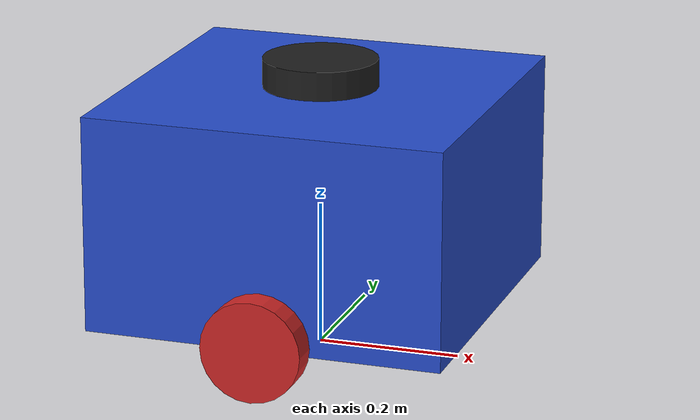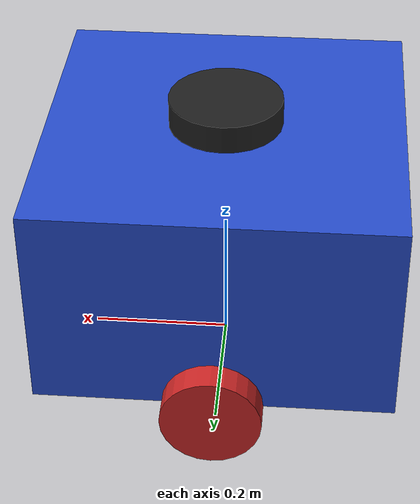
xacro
<?xml version="1.0"?>
<robot name="swervedrive_robot" xmlns:xacro="http://www.ros.org/wiki/xacro">

    <!-- Xacro parameters -->
    <xacro:property name="base_length" value="0.5"/>
    <xacro:property name="base_height" value="0.3"/>
    <xacro:property name="base_width" value="0.5"/>
    <xacro:property name="wheel_radius" value="0.07"/>
    <xacro:property name="wheel_length" value="0.04"/>
    <xacro:property name="rotate_90" value="1.57"/>
    <xacro:property name ="lidar_length" value = "0.04"/>
    <xacro:property name ="lidar_radius" value = "0.08"/>

    <!-- Wheel macro -->
    <xacro:macro name="wheel_link" params="prefix">
        <link name="${prefix}_wheel_link">
            <visual>
                <geometry>
                    <cylinder radius="${wheel_radius}" length="${wheel_length}"/>
                </geometry>
                <!-- Rotate cylinder to roll correctly along Y axis -->
                <origin xyz="0.0 0.0 0.0" rpy="${rotate_90} 0.0 0.0"/>
                <material name="red"/>
            </visual>
            <collision>
                <geometry>
                    <sphere radius="${wheel_radius}"/>
                </geometry>
                <origin xyz="0.0 0.0 0.0" rpy="0.0 0.0 0.0"/>
            </collision>
            <xacro:cylinder_inertia
                m="1.0"
                r="${wheel_radius}"
                l="${wheel_length}"
                o_xyz="0.0 0.0 0.0"
                o_rpy="0.0 ${rotate_90} 0.0"/>
        </link>
    </xacro:macro>

    <!-- Caster wheel macro -->
    <xacro:macro name="caster_wheel_link" params="prefix">
        <link name="${prefix}_caster_wheel_link">
            <visual>
                <geometry>
                    <sphere radius="${wheel_radius / 2.0}"/>
                </geometry>
                <origin xyz="0.0 0.0 0.0" rpy="0.0 0.0 0.0"/>
                <material name="green"/>
            </visual>
            <collision>
                <geometry>
                    <sphere radius="${wheel_radius / 2.0}"/>
                </geometry>
                <origin xyz="0.0 0.0 0.0" rpy="0.0 0.0 0.0"/>
            </collision>
            <xacro:sphere_inertia m="0.5" r="${wheel_radius / 2.0}" o_xyz="0.0 0.0 0.0" o_rpy="0.0 0.0 0.0"/>
        </link>
    </xacro:macro>

    <!-- Instantiate wheels -->
    <xacro:wheel_link prefix="right"/>
    <xacro:wheel_link prefix="left"/>
    <xacro:caster_wheel_link prefix="front"/>
    <xacro:caster_wheel_link prefix="back"/>

    <!-- Base links -->
    <link name="base_footprint"/>

    <link name="base_link">
        <visual>
            <geometry>
                <box size="${base_length} ${base_width} ${base_height}"/>
            </geometry>
            <origin xyz="0.0 0.0 ${base_height / 2.0}" rpy="0.0 0.0 0.0"/>
            <material name="blue"/>
        </visual>
        <collision>
            <geometry>
                <box size="${base_length} ${base_width} ${base_height}"/>
            </geometry>
            <origin xyz="0.0 0.0 ${base_height / 2.0}" rpy="0.0 0.0 0.0"/>
        </collision>
        <xacro:box_inertia
            m="5.0"
            x="${base_length}"
            y="${base_width}"
            z="${base_height}"
            o_xyz="0.0 0.0 ${base_height / 2.0}"
            o_rpy="0.0 0.0 0.0"/>
    </link>

    <!-- Base scan link -->
    <link name="base_scan_link">
        <visual>
            <geometry>
                <cylinder radius="${lidar_radius}" length="${lidar_length}"/>
            </geometry>
            <origin xyz="0.0 0.0 0.0" rpy="0.0 0.0 0.0"/>
            <material name="black"/>
        </visual>
        <collision>
            <geometry>
                <cylinder radius="${lidar_radius}" length="${lidar_length}"/>
            </geometry>
            <origin xyz="0.0 0.0 0.0" rpy="0.0 0.0 0.0"/>
        </collision>
        <xacro:cylinder_inertia
            m="0.2"
            r="${lidar_radius}"
            l="${lidar_length}"
            o_xyz="0.0 0.0 0.0"
            o_rpy="0.0 0.0 0.0"/>
    </link>

    <!-- Joints -->
    <joint name="base_footprint_base_link_joint" type="fixed">
        <origin xyz="0.0 0.0 ${wheel_radius}" rpy="0.0 0.0 0.0"/>
        <parent link="base_footprint"/>
        <child link="base_link"/>
    </joint>
    <!-- Wheels are now placed along Y-axis (left/right), robot moves along +X -->
    <joint name="base_right_wheel_joint" type="revolute">
        <origin xyz="0.0 ${-base_width / 2.0 - wheel_length / 2} ${wheel_radius/6}" rpy="0.0 0.0 0.0"/>
        <parent link="base_link"/>
        <child link="right_wheel_link"/>
        <axis xyz="0.0 1.0 0.0"/>
        <limit lower="0.0" upper="6.28" effort="100.0" velocity="5.0"/>
    </joint>

    <joint name="base_left_wheel_joint" type="revolute">
        <origin xyz="0.0 ${base_width / 2.0 + wheel_length / 2} 0.0" rpy="0.0 0.0 0.0"/>
        <parent link="base_link"/>
        <child link="left_wheel_link"/>
        <axis xyz="0.0 1.0 0.0"/>
        <limit lower="0.0" upper="6.28" effort="100.0" velocity="5.0"/>
    </joint>

    <!-- Casters placed front/back along X-axis -->
    <joint name="base_front_caster_wheel_joint" type="fixed">
        <origin xyz="${base_length / 2.0 - wheel_radius} 0.0 ${-wheel_radius/2}" rpy="0.0 0.0 0.0"/>
        <parent link="base_link"/>
        <child link="front_caster_wheel_link"/>
    </joint>

    <joint name="base_back_caster_wheel_joint" type="fixed">
        <origin xyz="${-base_length / 2.0 + wheel_radius} 0.0 ${-wheel_radius/2}" rpy="0.0 0.0 0.0"/>
        <parent link="base_link"/>
        <child link="back_caster_wheel_link"/>
    </joint>

    <!-- base scan joint -->
    <joint name="base_scan_base_link_joint" type="fixed">
        <origin xyz="0.0 0.0 ${base_height + (lidar_length/2)}" rpy="0.0 0.0 0.0"/>
        <parent link="base_link"/>
        <child link="base_scan_link"/>
    </joint>

</robot>
